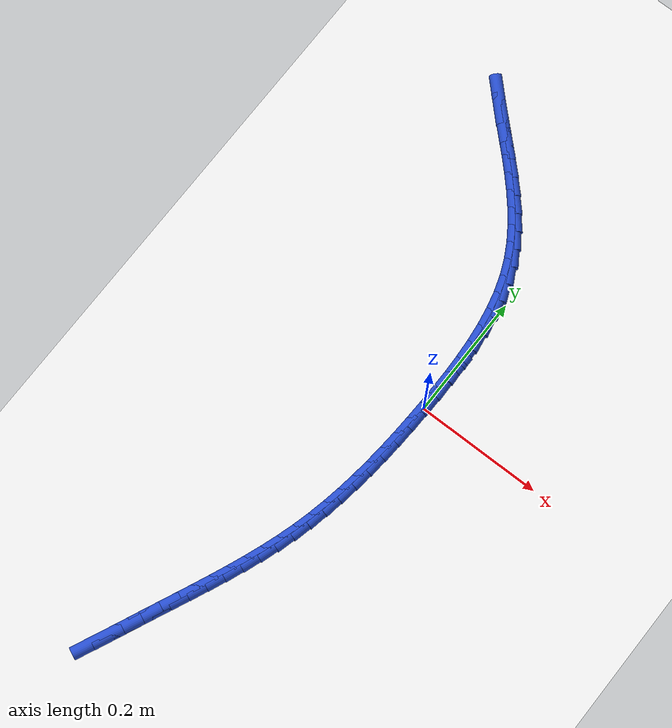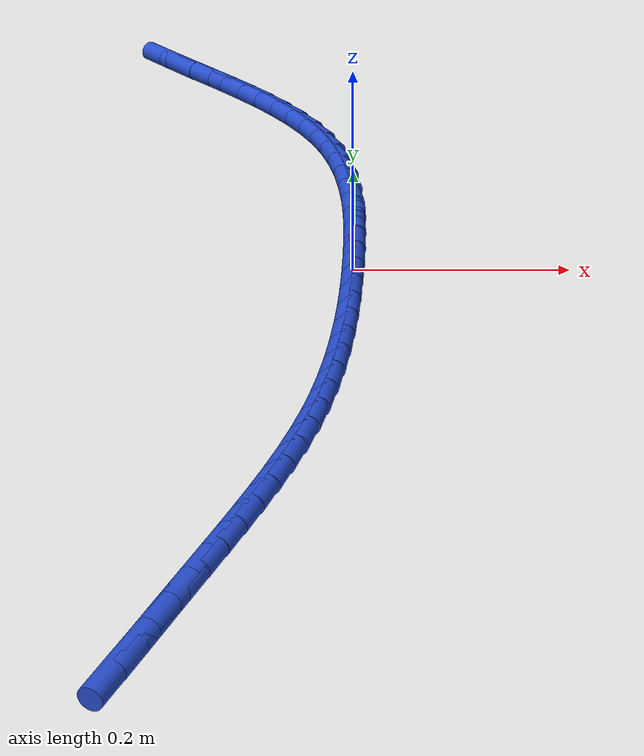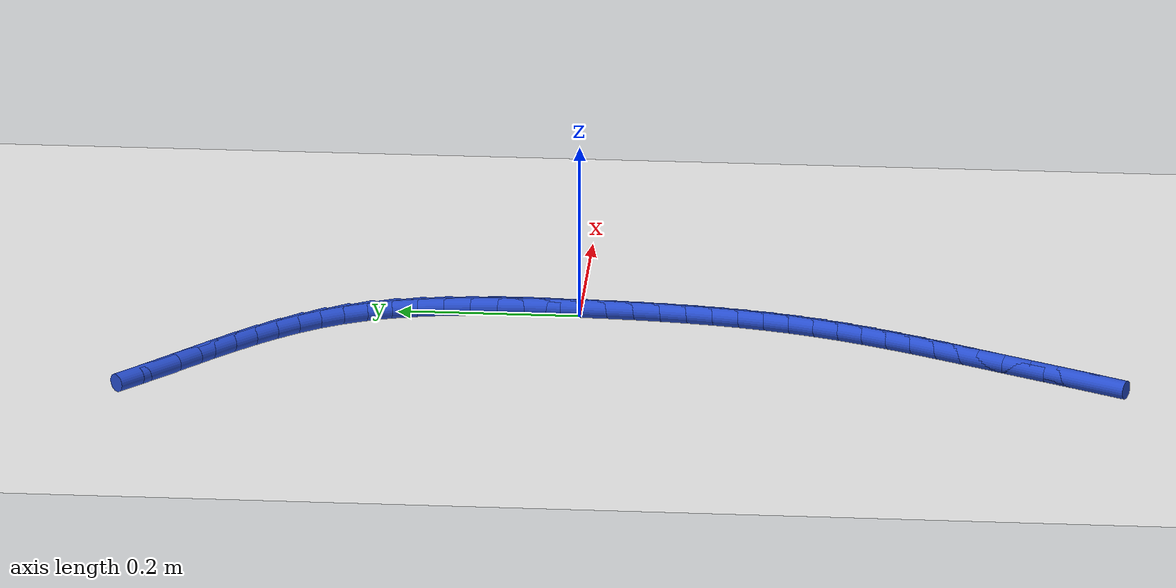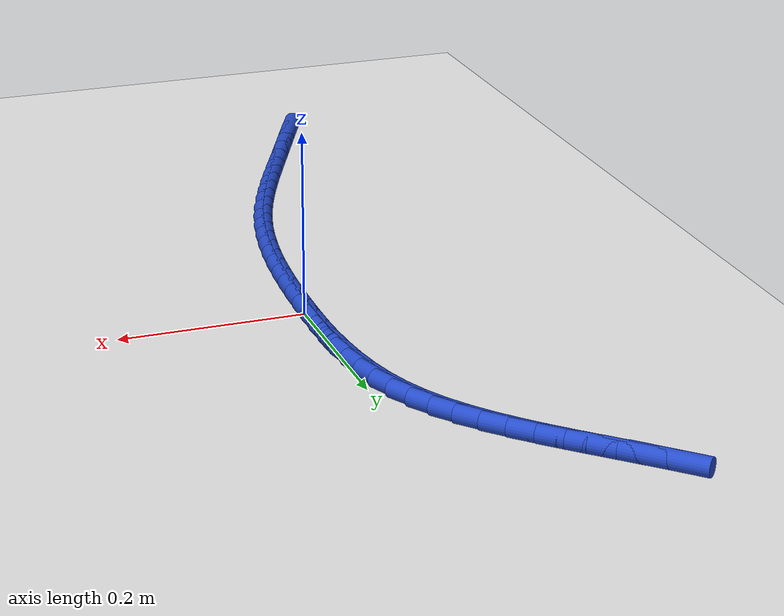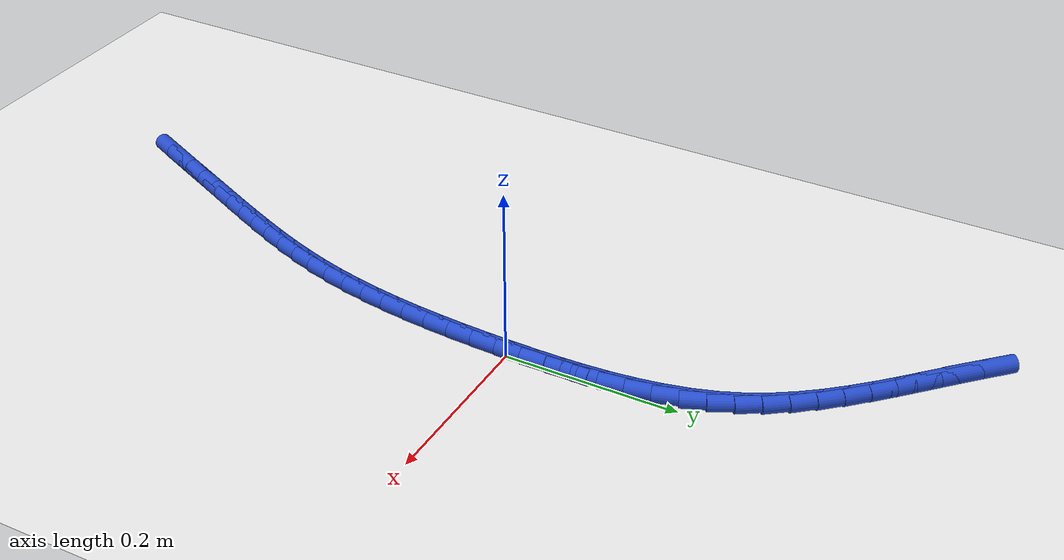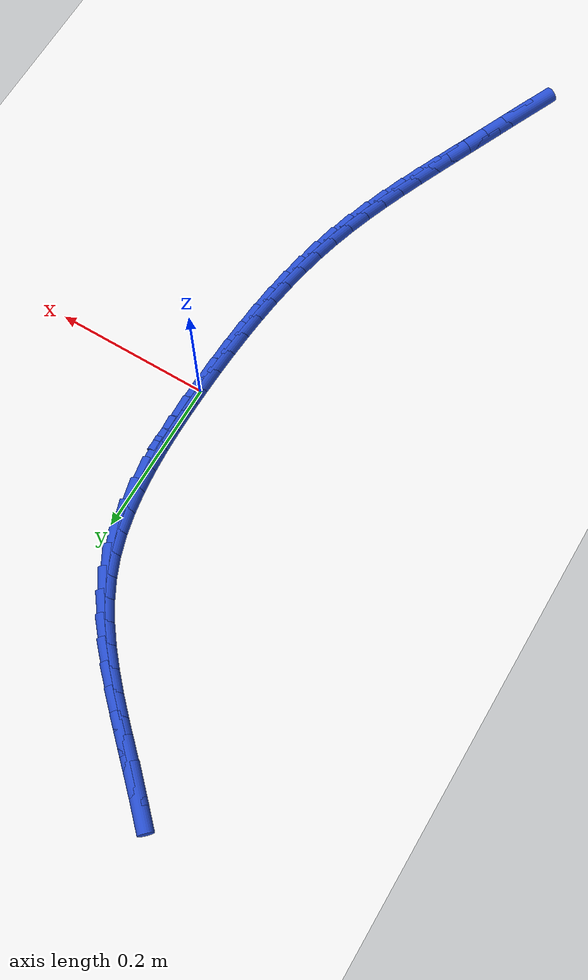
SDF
<sdf version="1.6">
 <world name="default">
  <model name="ground_plane">
   <static>1</static>
   <link name="link">
    <collision name="collision">
     <geometry><plane><normal>0 0 1</normal><size>100 100</size></plane></geometry>
     <surface><friction><ode><mu>100</mu><mu2>50</mu2></ode></friction></surface>
    </collision>
    <visual name="visual">
     <cast_shadows>0</cast_shadows>
     <geometry><plane><normal>0 0 1</normal><size>100 100</size></plane></geometry>
     <material>
      <script><uri>file://media/materials/scripts/gazebo.material</uri><name>Gazebo/WhiteGlow</name></script>
     </material>
    </visual>
   </link>
  </model>
  <model name="line">
   <link name="link_0">
    <pose>-9.540979117872439e-18 -2.7755575615628914e-17 0.01 0 1.57 1.5484883831746084</pose>
    <collision name="collision">
     <geometry><cylinder><radius>0.01</radius><length>0.08</length></cylinder></geometry>
    </collision>
    <visual name="visual">
     <material>
      <script><name>Gazebo/Blue</name><uri>file://media/materials/scripts/gazebo.material</uri></script>
     </material>
     <geometry><cylinder><radius>0.01</radius><length>0.08</length></cylinder></geometry>
    </visual>
   </link>
   <link name="link_1">
    <pose>0.0006747044016769681 0.030240011742095913 0.01 0 1.57 1.5692283280628736</pose>
    <collision name="collision">
     <geometry><cylinder><radius>0.01</radius><length>0.08</length></cylinder></geometry>
    </collision>
    <visual name="visual">
     <material>
      <script><name>Gazebo/Blue</name><uri>file://media/materials/scripts/gazebo.material</uri></script>
     </material>
     <geometry><cylinder><radius>0.01</radius><length>0.08</length></cylinder></geometry>
    </visual>
   </link>
   <link name="link_2">
    <pose>0.000722217827271528 0.06054194100073871 0.01 0 1.57 -1.5439458558823596</pose>
    <collision name="collision">
     <geometry><cylinder><radius>0.01</radius><length>0.08</length></cylinder></geometry>
    </collision>
    <visual name="visual">
     <material>
      <script><name>Gazebo/Blue</name><uri>file://media/materials/scripts/gazebo.material</uri></script>
     </material>
     <geometry><cylinder><radius>0.01</radius><length>0.08</length></cylinder></geometry>
    </visual>
   </link>
   <link name="link_3">
    <pose>-8.813932358002659e-05 0.09071505797876772 0.01 0 1.57 -1.5072745340165148</pose>
    <collision name="collision">
     <geometry><cylinder><radius>0.01</radius><length>0.08</length></cylinder></geometry>
    </collision>
    <visual name="visual">
     <material>
      <script><name>Gazebo/Blue</name><uri>file://media/materials/scripts/gazebo.material</uri></script>
     </material>
     <geometry><cylinder><radius>0.01</radius><length>0.08</length></cylinder></geometry>
    </visual>
   </link>
   <link name="link_4">
    <pose>-0.001987046651241392 0.12056863287902227 0.01 0 1.57 -1.461560944917181</pose>
    <collision name="collision">
     <geometry><cylinder><radius>0.01</radius><length>0.08</length></cylinder></geometry>
    </collision>
    <visual name="visual">
     <material>
      <script><name>Gazebo/Blue</name><uri>file://media/materials/scripts/gazebo.material</uri></script>
     </material>
     <geometry><cylinder><radius>0.01</radius><length>0.08</length></cylinder></geometry>
    </visual>
   </link>
   <link name="link_5">
    <pose>-0.005205183756076266 0.14991193590434168 0.01 0 1.57 -1.4058402781953563</pose>
    <collision name="collision">
     <geometry><cylinder><radius>0.01</radius><length>0.08</length></cylinder></geometry>
    </collision>
    <visual name="visual">
     <material>
      <script><name>Gazebo/Blue</name><uri>file://media/materials/scripts/gazebo.material</uri></script>
     </material>
     <geometry><cylinder><radius>0.01</radius><length>0.08</length></cylinder></geometry>
    </visual>
   </link>
   <link name="link_6">
    <pose>-0.009973230238448347 0.17855423725756528 0.01 0 1.57 -1.339053946603382</pose>
    <collision name="collision">
     <geometry><cylinder><radius>0.01</radius><length>0.08</length></cylinder></geometry>
    </collision>
    <visual name="visual">
     <material>
      <script><name>Gazebo/Blue</name><uri>file://media/materials/scripts/gazebo.material</uri></script>
     </material>
     <geometry><cylinder><radius>0.01</radius><length>0.08</length></cylinder></geometry>
    </visual>
   </link>
   <link name="link_7">
    <pose>-0.016521865698721327 0.2063048071415322 0.01 0 1.57 -1.2602055314917822</pose>
    <collision name="collision">
     <geometry><cylinder><radius>0.01</radius><length>0.08</length></cylinder></geometry>
    </collision>
    <visual name="visual">
     <material>
      <script><name>Gazebo/Blue</name><uri>file://media/materials/scripts/gazebo.material</uri></script>
     </material>
     <geometry><cylinder><radius>0.01</radius><length>0.08</length></cylinder></geometry>
    </visual>
   </link>
   <link name="link_8">
    <pose>-0.025081769737258914 0.23297291575908202 0.01 0 1.57 -1.1688429636531577</pose>
    <collision name="collision">
     <geometry><cylinder><radius>0.01</radius><length>0.08</length></cylinder></geometry>
    </collision>
    <visual name="visual">
     <material>
      <script><name>Gazebo/Blue</name><uri>file://media/materials/scripts/gazebo.material</uri></script>
     </material>
     <geometry><cylinder><radius>0.01</radius><length>0.08</length></cylinder></geometry>
    </visual>
   </link>
   <link name="link_9">
    <pose>-0.03587869097670112 0.2583716000240663 0.01 0 1.57 -1.0744107391107462</pose>
    <collision name="collision">
     <geometry><cylinder><radius>0.01</radius><length>0.08</length></cylinder></geometry>
    </collision>
    <visual name="visual">
     <material>
      <script><name>Gazebo/Blue</name><uri>file://media/materials/scripts/gazebo.material</uri></script>
     </material>
     <geometry><cylinder><radius>0.01</radius><length>0.08</length></cylinder></geometry>
    </visual>
   </link>
   <link name="link_10">
    <pose>-0.0489317666691276 0.28247172464197645 0.01 0 1.57 -0.9910271843023188</pose>
    <collision name="collision">
     <geometry><cylinder><radius>0.01</radius><length>0.08</length></cylinder></geometry>
    </collision>
    <visual name="visual">
     <material>
      <script><name>Gazebo/Blue</name><uri>file://media/materials/scripts/gazebo.material</uri></script>
     </material>
     <geometry><cylinder><radius>0.01</radius><length>0.08</length></cylinder></geometry>
    </visual>
   </link>
   <link name="link_11">
    <pose>-0.06398277350245637 0.3054560265168717 0.01 0 1.57 -0.9208965060991512</pose>
    <collision name="collision">
     <geometry><cylinder><radius>0.01</radius><length>0.08</length></cylinder></geometry>
    </collision>
    <visual name="visual">
     <material>
      <script><name>Gazebo/Blue</name><uri>file://media/materials/scripts/gazebo.material</uri></script>
     </material>
     <geometry><cylinder><radius>0.01</radius><length>0.08</length></cylinder></geometry>
    </visual>
   </link>
   <link name="link_12">
    <pose>-0.08075402157961464 0.32752211282888294 0.01 0 1.57 -0.8643976082467374</pose>
    <collision name="collision">
     <geometry><cylinder><radius>0.01</radius><length>0.08</length></cylinder></geometry>
    </collision>
    <visual name="visual">
     <material>
      <script><name>Gazebo/Blue</name><uri>file://media/materials/scripts/gazebo.material</uri></script>
     </material>
     <geometry><cylinder><radius>0.01</radius><length>0.08</length></cylinder></geometry>
    </visual>
   </link>
   <link name="link_13">
    <pose>-0.09896782100352962 0.3488675907581414 0.01 0 1.57 -0.8212975343984538</pose>
    <collision name="collision">
     <geometry><cylinder><radius>0.01</radius><length>0.08</length></cylinder></geometry>
    </collision>
    <visual name="visual">
     <material>
      <script><name>Gazebo/Blue</name><uri>file://media/materials/scripts/gazebo.material</uri></script>
     </material>
     <geometry><cylinder><radius>0.01</radius><length>0.08</length></cylinder></geometry>
    </visual>
   </link>
   <link name="link_14">
    <pose>-0.11834648187712847 0.36969006748477834 0.01 0 1.57 -0.7910711579913317</pose>
    <collision name="collision">
     <geometry><cylinder><radius>0.01</radius><length>0.08</length></cylinder></geometry>
    </collision>
    <visual name="visual">
     <material>
      <script><name>Gazebo/Blue</name><uri>file://media/materials/scripts/gazebo.material</uri></script>
     </material>
     <geometry><cylinder><radius>0.01</radius><length>0.08</length></cylinder></geometry>
    </visual>
   </link>
   <link name="link_15">
    <pose>-0.13861231430333837 0.3901871501889247 0.01 0 1.57 -0.7731300674181292</pose>
    <collision name="collision">
     <geometry><cylinder><radius>0.01</radius><length>0.08</length></cylinder></geometry>
    </collision>
    <visual name="visual">
     <material>
      <script><name>Gazebo/Blue</name><uri>file://media/materials/scripts/gazebo.material</uri></script>
     </material>
     <geometry><cylinder><radius>0.01</radius><length>0.08</length></cylinder></geometry>
    </visual>
   </link>
   <link name="link_16">
    <pose>-0.15948762838508665 0.4105564460507118 0.01 0 1.57 -0.7669594535739842</pose>
    <collision name="collision">
     <geometry><cylinder><radius>0.01</radius><length>0.08</length></cylinder></geometry>
    </collision>
    <visual name="visual">
     <material>
      <script><name>Gazebo/Blue</name><uri>file://media/materials/scripts/gazebo.material</uri></script>
     </material>
     <geometry><cylinder><radius>0.01</radius><length>0.08</length></cylinder></geometry>
    </visual>
   </link>
   <link name="link_17">
    <pose>-0.18069473422530036 0.4309955622502707 0.01 0 1.57 -0.7721824996168228</pose>
    <collision name="collision">
     <geometry><cylinder><radius>0.01</radius><length>0.08</length></cylinder></geometry>
    </collision>
    <visual name="visual">
     <material>
      <script><name>Gazebo/Blue</name><uri>file://media/materials/scripts/gazebo.material</uri></script>
     </material>
     <geometry><cylinder><radius>0.01</radius><length>0.08</length></cylinder></geometry>
    </visual>
   </link>
   <link name="link_18">
    <pose>-0.20195594192690672 0.45170210596773264 0.01 0 1.57 -0.7885718389445868</pose>
    <collision name="collision">
     <geometry><cylinder><radius>0.01</radius><length>0.08</length></cylinder></geometry>
    </collision>
    <visual name="visual">
     <material>
      <script><name>Gazebo/Blue</name><uri>file://media/materials/scripts/gazebo.material</uri></script>
     </material>
     <geometry><cylinder><radius>0.01</radius><length>0.08</length></cylinder></geometry>
    </visual>
   </link>
   <link name="link_230">
    <pose>-0.15911734382754436 -0.5604757644062406 0.01 0 1.57 1.1434344786039508</pose>
    <collision name="collision">
     <geometry><cylinder><radius>0.01</radius><length>0.08</length></cylinder></geometry>
    </collision>
    <visual name="visual">
     <material>
      <script><name>Gazebo/Blue</name><uri>file://media/materials/scripts/gazebo.material</uri></script>
     </material>
     <geometry><cylinder><radius>0.01</radius><length>0.08</length></cylinder></geometry>
    </visual>
   </link>
   <link name="link_231">
    <pose>-0.14613873375034062 -0.5319783929702752 0.01 0 1.57 1.1501727807870503</pose>
    <collision name="collision">
     <geometry><cylinder><radius>0.01</radius><length>0.08</length></cylinder></geometry>
    </collision>
    <visual name="visual">
     <material>
      <script><name>Gazebo/Blue</name><uri>file://media/materials/scripts/gazebo.material</uri></script>
     </material>
     <geometry><cylinder><radius>0.01</radius><length>0.08</length></cylinder></geometry>
    </visual>
   </link>
   <link name="link_232">
    <pose>-0.1334291347269426 -0.5035656672255857 0.01 0 1.57 1.1506241690142198</pose>
    <collision name="collision">
     <geometry><cylinder><radius>0.01</radius><length>0.08</length></cylinder></geometry>
    </collision>
    <visual name="visual">
     <material>
      <script><name>Gazebo/Blue</name><uri>file://media/materials/scripts/gazebo.material</uri></script>
     </material>
     <geometry><cylinder><radius>0.01</radius><length>0.08</length></cylinder></geometry>
    </visual>
   </link>
   <link name="link_233">
    <pose>-0.12087858969563142 -0.4754745001241625 0.01 0 1.57 1.1480355097875763</pose>
    <collision name="collision">
     <geometry><cylinder><radius>0.01</radius><length>0.08</length></cylinder></geometry>
    </collision>
    <visual name="visual">
     <material>
      <script><name>Gazebo/Blue</name><uri>file://media/materials/scripts/gazebo.material</uri></script>
     </material>
     <geometry><cylinder><radius>0.01</radius><length>0.08</length></cylinder></geometry>
    </visual>
   </link>
   <link name="link_234">
    <pose>-0.10844620782349401 -0.44784010947574215 0.01 0 1.57 1.149559266592523</pose>
    <collision name="collision">
     <geometry><cylinder><radius>0.01</radius><length>0.08</length></cylinder></geometry>
    </collision>
    <visual name="visual">
     <material>
      <script><name>Gazebo/Blue</name><uri>file://media/materials/scripts/gazebo.material</uri></script>
     </material>
     <geometry><cylinder><radius>0.01</radius><length>0.08</length></cylinder></geometry>
    </visual>
   </link>
   <link name="link_235">
    <pose>-0.09623483892271995 -0.4205860651457031 0.01 0 1.57 1.156292920560028</pose>
    <collision name="collision">
     <geometry><cylinder><radius>0.01</radius><length>0.08</length></cylinder></geometry>
    </collision>
    <visual name="visual">
     <material>
      <script><name>Gazebo/Blue</name><uri>file://media/materials/scripts/gazebo.material</uri></script>
     </material>
     <geometry><cylinder><radius>0.01</radius><length>0.08</length></cylinder></geometry>
    </visual>
   </link>
   <link name="link_236">
    <pose>-0.08436527198169654 -0.3936095228299104 0.01 0 1.57 1.168414617394658</pose>
    <collision name="collision">
     <geometry><cylinder><radius>0.01</radius><length>0.08</length></cylinder></geometry>
    </collision>
    <visual name="visual">
     <material>
      <script><name>Gazebo/Blue</name><uri>file://media/materials/scripts/gazebo.material</uri></script>
     </material>
     <geometry><cylinder><radius>0.01</radius><length>0.08</length></cylinder></geometry>
    </visual>
   </link>
   <link name="link_237">
    <pose>-0.072958295988811 -0.36680763822422857 0.01 0 1.57 1.1860539913188455</pose>
    <collision name="collision">
     <geometry><cylinder><radius>0.01</radius><length>0.08</length></cylinder></geometry>
    </collision>
    <visual name="visual">
     <material>
      <script><name>Gazebo/Blue</name><uri>file://media/materials/scripts/gazebo.material</uri></script>
     </material>
     <geometry><cylinder><radius>0.01</radius><length>0.08</length></cylinder></geometry>
    </visual>
   </link>
   <link name="link_238">
    <pose>-0.06213469993245063 -0.34007756702452274 0.01 0 1.57 1.2092761492921815</pose>
    <collision name="collision">
     <geometry><cylinder><radius>0.01</radius><length>0.08</length></cylinder></geometry>
    </collision>
    <visual name="visual">
     <material>
      <script><name>Gazebo/Blue</name><uri>file://media/materials/scripts/gazebo.material</uri></script>
     </material>
     <geometry><cylinder><radius>0.01</radius><length>0.08</length></cylinder></geometry>
    </visual>
   </link>
   <link name="link_239">
    <pose>-0.05201527280100266 -0.3133164649266574 0.01 0 1.57 1.238061140512462</pose>
    <collision name="collision">
     <geometry><cylinder><radius>0.01</radius><length>0.08</length></cylinder></geometry>
    </collision>
    <visual name="visual">
     <material>
      <script><name>Gazebo/Blue</name><uri>file://media/materials/scripts/gazebo.material</uri></script>
     </material>
     <geometry><cylinder><radius>0.01</radius><length>0.08</length></cylinder></geometry>
    </visual>
   </link>
   <link name="link_240">
    <pose>-0.04272080358285464 -0.28642148762649844 0.01 0 1.57 1.2722802940203601</pose>
    <collision name="collision">
     <geometry><cylinder><radius>0.01</radius><length>0.08</length></cylinder></geometry>
    </collision>
    <visual name="visual">
     <material>
      <script><name>Gazebo/Blue</name><uri>file://media/materials/scripts/gazebo.material</uri></script>
     </material>
     <geometry><cylinder><radius>0.01</radius><length>0.08</length></cylinder></geometry>
    </visual>
   </link>
   <link name="link_241">
    <pose>-0.03437208126639331 -0.25928979081990916 0.01 0 1.57 1.311365960909539</pose>
    <collision name="collision">
     <geometry><cylinder><radius>0.01</radius><length>0.08</length></cylinder></geometry>
    </collision>
    <visual name="visual">
     <material>
      <script><name>Gazebo/Blue</name><uri>file://media/materials/scripts/gazebo.material</uri></script>
     </material>
     <geometry><cylinder><radius>0.01</radius><length>0.08</length></cylinder></geometry>
    </visual>
   </link>
   <link name="link_242">
    <pose>-0.02708208242770977 -0.23182303197958948 0.01 0 1.57 1.350627481998871</pose>
    <collision name="collision">
     <geometry><cylinder><radius>0.01</radius><length>0.08</length></cylinder></geometry>
    </collision>
    <visual name="visual">
     <material>
      <script><name>Gazebo/Blue</name><uri>file://media/materials/scripts/gazebo.material</uri></script>
     </material>
     <geometry><cylinder><radius>0.01</radius><length>0.08</length></cylinder></geometry>
    </visual>
   </link>
   <link name="link_243">
    <pose>-0.020852472127134463 -0.2039870100474836 0.01 0 1.57 1.386664094088719</pose>
    <collision name="collision">
     <geometry><cylinder><radius>0.01</radius><length>0.08</length></cylinder></geometry>
    </collision>
    <visual name="visual">
     <material>
      <script><name>Gazebo/Blue</name><uri>file://media/materials/scripts/gazebo.material</uri></script>
     </material>
     <geometry><cylinder><radius>0.01</radius><length>0.08</length></cylinder></geometry>
    </visual>
   </link>
   <link name="link_244">
    <pose>-0.015601997275116315 -0.17579530421472367 0.01 0 1.57 1.4193479235428985</pose>
    <collision name="collision">
     <geometry><cylinder><radius>0.01</radius><length>0.08</length></cylinder></geometry>
    </collision>
    <visual name="visual">
     <material>
      <script><name>Gazebo/Blue</name><uri>file://media/materials/scripts/gazebo.material</uri></script>
     </material>
     <geometry><cylinder><radius>0.01</radius><length>0.08</length></cylinder></geometry>
    </visual>
   </link>
   <link name="link_245">
    <pose>-0.011247425861249811 -0.14726263399373055 0.01 0 1.57 1.448675482415865</pose>
    <collision name="collision">
     <geometry><cylinder><radius>0.01</radius><length>0.08</length></cylinder></geometry>
    </collision>
    <visual name="visual">
     <material>
      <script><name>Gazebo/Blue</name><uri>file://media/materials/scripts/gazebo.material</uri></script>
     </material>
     <geometry><cylinder><radius>0.01</radius><length>0.08</length></cylinder></geometry>
    </visual>
   </link>
   <link name="link_246">
    <pose>-0.007705525875129475 -0.11840371889692522 0.01 0 1.57 1.4746786776594463</pose>
    <collision name="collision">
     <geometry><cylinder><radius>0.01</radius><length>0.08</length></cylinder></geometry>
    </collision>
    <visual name="visual">
     <material>
      <script><name>Gazebo/Blue</name><uri>file://media/materials/scripts/gazebo.material</uri></script>
     </material>
     <geometry><cylinder><radius>0.01</radius><length>0.08</length></cylinder></geometry>
    </visual>
   </link>
   <link name="link_247">
    <pose>-0.004893065306349819 -0.08923327843672858 0.01 0 1.57 1.4974143967478442</pose>
    <collision name="collision">
     <geometry><cylinder><radius>0.01</radius><length>0.08</length></cylinder></geometry>
    </collision>
    <visual name="visual">
     <material>
      <script><name>Gazebo/Blue</name><uri>file://media/materials/scripts/gazebo.material</uri></script>
     </material>
     <geometry><cylinder><radius>0.01</radius><length>0.08</length></cylinder></geometry>
    </visual>
   </link>
   <link name="link_248">
    <pose>-0.002726812144505347 -0.05976603212556156 0.01 0 1.57 1.5169555138554573</pose>
    <collision name="collision">
     <geometry><cylinder><radius>0.01</radius><length>0.08</length></cylinder></geometry>
    </collision>
    <visual name="visual">
     <material>
      <script><name>Gazebo/Blue</name><uri>file://media/materials/scripts/gazebo.material</uri></script>
     </material>
     <geometry><cylinder><radius>0.01</radius><length>0.08</length></cylinder></geometry>
    </visual>
   </link>
   <link name="link_249">
    <pose>-0.001123534379190577 -0.030016699475845107 0.01 0 1.57 1.533383482000525</pose>
    <collision name="collision">
     <geometry><cylinder><radius>0.01</radius><length>0.08</length></cylinder></geometry>
    </collision>
    <visual name="visual">
     <material>
      <script><name>Gazebo/Blue</name><uri>file://media/materials/scripts/gazebo.material</uri></script>
     </material>
     <geometry><cylinder><radius>0.01</radius><length>0.08</length></cylinder></geometry>
    </visual>
   </link>
   <link name="link_250">
    <pose>-1.3335686721571705e-17 -1.3183898417423734e-16 0.01 0 1.57 1.5467824868630884</pose>
    <collision name="collision">
     <geometry><cylinder><radius>0.01</radius><length>0.08</length></cylinder></geometry>
    </collision>
    <visual name="visual">
     <material>
      <script><name>Gazebo/Blue</name><uri>file://media/materials/scripts/gazebo.material</uri></script>
     </material>
     <geometry><cylinder><radius>0.01</radius><length>0.08</length></cylinder></geometry>
    </visual>
   </link>
   <link name="link_251">
    <pose>0.0007270230034718291 0.030269346789552433 0.01 0 1.57 1.5572350277377607</pose>
    <collision name="collision">
     <geometry><cylinder><radius>0.01</radius><length>0.08</length></cylinder></geometry>
    </collision>
    <visual name="visual">
     <material>
      <script><name>Gazebo/Blue</name><uri>file://media/materials/scripts/gazebo.material</uri></script>
     </material>
     <geometry><cylinder><radius>0.01</radius><length>0.08</length></cylinder></geometry>
    </visual>
   </link>
   <link name="link_252">
    <pose>0.001140766641630442 0.060776621380391645 0.01 0 1.57 1.552028704021923</pose>
    <collision name="collision">
     <geometry><cylinder><radius>0.01</radius><length>0.08</length></cylinder></geometry>
    </collision>
    <visual name="visual">
     <material>
      <script><name>Gazebo/Blue</name><uri>file://media/materials/scripts/gazebo.material</uri></script>
     </material>
     <geometry><cylinder><radius>0.01</radius><length>0.08</length></cylinder></geometry>
    </visual>
   </link>
  </model>
 </world>
</sdf>
